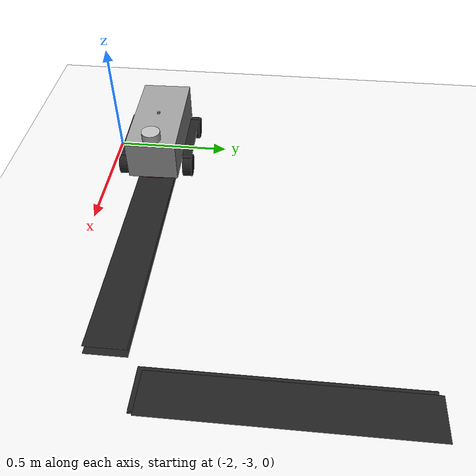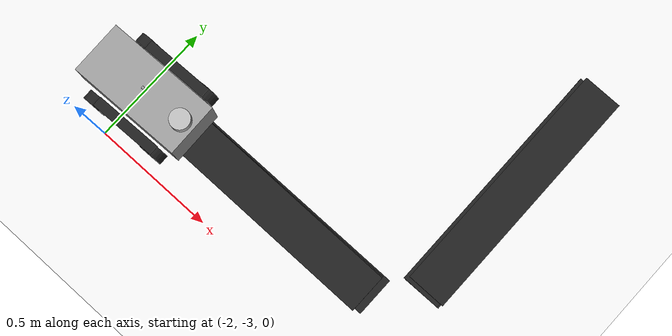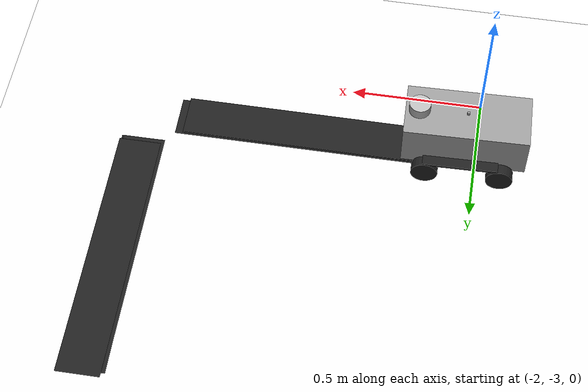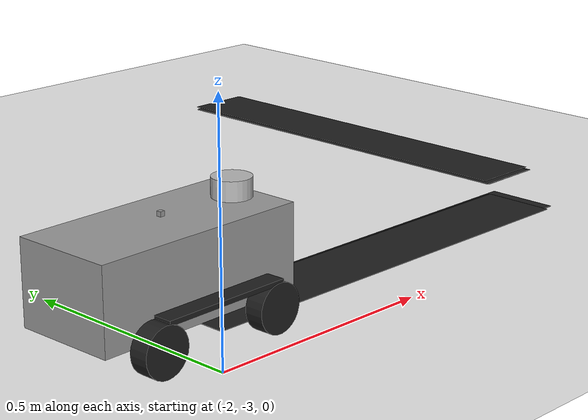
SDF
<sdf version="1.7">
 <world name="default">
  <model name="ground_plane">
   <static>1</static>
   <link name="link">
    <collision name="collision">
     <geometry><plane><normal>0 0 1</normal><size>100 100</size></plane></geometry>
     <surface>
      <contact><collide_bitmask>65535</collide_bitmask></contact>
      <friction><ode><mu>100</mu><mu2>50</mu2></ode></friction>
     </surface>
    </collision>
    <visual name="visual">
     <cast_shadows>0</cast_shadows>
     <geometry><plane><normal>0 0 1</normal><size>100 100</size></plane></geometry>
     <material>
      <script><uri>file://media/materials/scripts/gazebo.material</uri><name>Gazebo/White</name></script>
     </material>
    </visual>
   </link>
  </model>
  <model name="tankbot0">
   <pose>-1.9498 -2.79034 -1e-06 -2e-06 -3e-06 0.024518</pose>
   <frame name="tankbot::__model__" attached_to="tankbot::chassis">
    <pose relative_to="__model__">0 0 0 0 -0 0</pose>
   </frame>
   <link name="tankbot::chassis">
    <pose relative_to="tankbot::__model__">0 0 0.135 0 -0 0</pose>
    <inertial>
     <pose>0.0465 0 0 0 -0 0</pose>
     <mass>2</mass>
     <inertia>
      <ixx>0.0125927</ixx>
      <iyy>0.0408542</iyy>
      <izz>0.0438135</izz>
      <ixy>0</ixy>
      <ixz>0</ixz>
      <iyz>0</iyz>
     </inertia>
    </inertial>
    <collision name="collision"><geometry><box><size>0.465 0.216 0.17</size></box></geometry></collision>
    <visual name="visual">
     <geometry><box><size>0.465 0.216 0.17</size></box></geometry>
     <material>
      <script><uri>file://media/materials/scripts/gazebo.material</uri><name>Gazebo/Grey</name></script>
     </material>
    </visual>
   </link>
   <link name="tankbot::wheel_fl">
    <pose relative_to="tankbot::__model__">0.1395 0.142 0.05 -1.5708 -0.087266 0</pose>
    <inertial>
     <mass>0.25</mass>
     <inertia>
      <ixx>0.000189583</ixx>
      <iyy>0.000189583</iyy>
      <izz>0.0003125</izz>
      <ixy>0</ixy>
      <ixz>0</ixz>
      <iyz>0</iyz>
     </inertia>
    </inertial>
    <collision name="collision">
     <geometry><cylinder><radius>0.05</radius><length>0.04</length></cylinder></geometry>
    </collision>
    <visual name="tankbot::wheel_fl">
     <geometry><cylinder><radius>0.05</radius><length>0.04</length></cylinder></geometry>
     <material>
      <script><uri>file://media/materials/scripts/gazebo.material</uri><name>Gazebo/Black</name></script>
     </material>
    </visual>
   </link>
   <joint name="tankbot::wheel_fl_drive" type="revolute">
    <parent>tankbot::chassis</parent>
    <child>tankbot::wheel_fl</child>
    <axis>
     <xyz>0 0 1</xyz>
     <limit><lower>-1e+16</lower><upper>1e+16</upper></limit>
     <dynamics><spring_reference>0</spring_reference><spring_stiffness>0</spring_stiffness></dynamics>
    </axis>
   </joint>
   <link name="tankbot::chain_l_up">
    <pose relative_to="tankbot::__model__">0.0098 0.14 0.1 0 -0 0</pose>
    <gravity>0</gravity>
    <collision name="collision"><geometry><box><size>0.28 0.04 0.01</size></box></geometry></collision>
    <visual name="visual">
     <geometry><box><size>0.28 0.04 0.01</size></box></geometry>
     <material>
      <script><uri>file://media/materials/scripts/gazebo.material</uri><name>Gazebo/Black</name></script>
     </material>
    </visual>
    <inertial>
     <inertia><ixx>1</ixx><ixy>0</ixy><ixz>0</ixz><iyy>1</iyy><iyz>0</iyz><izz>1</izz></inertia>
     <mass>1</mass>
    </inertial>
   </link>
   <link name="tankbot::chain_r_up">
    <pose relative_to="tankbot::__model__">0.0098 -0.14 0.1 0 -0 0</pose>
    <gravity>0</gravity>
    <collision name="collision"><geometry><box><size>0.28 0.04 0.01</size></box></geometry></collision>
    <visual name="visual">
     <geometry><box><size>0.28 0.04 0.01</size></box></geometry>
     <material>
      <script><uri>file://media/materials/scripts/gazebo.material</uri><name>Gazebo/Black</name></script>
     </material>
    </visual>
    <inertial>
     <inertia><ixx>1</ixx><ixy>0</ixy><ixz>0</ixz><iyy>1</iyy><iyz>0</iyz><izz>1</izz></inertia>
     <mass>1</mass>
    </inertial>
   </link>
   <joint name="tankbot::chain_up_joint" type="revolute">
    <parent>tankbot::chassis</parent>
    <child>tankbot::chain_r_up</child>
   </joint>
   <joint name="tankbot::chain_up_2_joint" type="revolute">
    <parent>tankbot::chassis</parent>
    <child>tankbot::chain_l_up</child>
   </joint>
   <link name="tankbot::wheel_fr">
    <pose relative_to="tankbot::__model__">0.1395 -0.142 0.05 -1.5708 -0.087266 0</pose>
    <inertial>
     <mass>0.25</mass>
     <inertia>
      <ixx>0.000189583</ixx>
      <iyy>0.000189583</iyy>
      <izz>0.0003125</izz>
      <ixy>0</ixy>
      <ixz>0</ixz>
      <iyz>0</iyz>
     </inertia>
    </inertial>
    <collision name="collision">
     <geometry><cylinder><radius>0.05</radius><length>0.04</length></cylinder></geometry>
    </collision>
    <visual name="visual">
     <geometry><cylinder><radius>0.05</radius><length>0.04</length></cylinder></geometry>
     <material>
      <script><uri>file://media/materials/scripts/gazebo.material</uri><name>Gazebo/Black</name></script>
     </material>
    </visual>
   </link>
   <joint name="tankbot::wheel_fr_drive" type="revolute">
    <parent>tankbot::chassis</parent>
    <child>tankbot::wheel_fr</child>
    <axis>
     <xyz>0 0 1</xyz>
     <limit><lower>-1e+16</lower><upper>1e+16</upper></limit>
     <dynamics><spring_reference>0</spring_reference><spring_stiffness>0</spring_stiffness></dynamics>
    </axis>
   </joint>
   <link name="tankbot::wheel_rl">
    <pose relative_to="tankbot::__model__">-0.1395 0.142 0.05 -1.5708 0 0</pose>
    <inertial>
     <mass>0.25</mass>
     <inertia>
      <ixx>0.000189583</ixx>
      <iyy>0.000189583</iyy>
      <izz>0.0003125</izz>
      <ixy>0</ixy>
      <ixz>0</ixz>
      <iyz>0</iyz>
     </inertia>
    </inertial>
    <collision name="collision">
     <geometry><cylinder><radius>0</radius><length>0</length></cylinder></geometry>
    </collision>
    <visual name="visual">
     <geometry><cylinder><radius>0.05</radius><length>0.04</length></cylinder></geometry>
     <material>
      <script><uri>file://media/materials/scripts/gazebo.material</uri><name>Gazebo/Black</name></script>
     </material>
    </visual>
   </link>
   <joint name="tankbot::wheel_rl_drive" type="revolute">
    <parent>tankbot::chassis</parent>
    <child>tankbot::wheel_rl</child>
    <axis>
     <xyz>0 0 1</xyz>
     <limit><lower>-1e+16</lower><upper>1e+16</upper></limit>
     <dynamics><spring_reference>0</spring_reference><spring_stiffness>0</spring_stiffness></dynamics>
    </axis>
   </joint>
   <link name="tankbot::wheel_rr">
    <pose relative_to="tankbot::__model__">-0.1395 -0.142 0.05 -1.5708 0 0</pose>
    <inertial>
     <mass>0.25</mass>
     <inertia>
      <ixx>0.000189583</ixx>
      <iyy>0.000189583</iyy>
      <izz>0.0003125</izz>
      <ixy>0</ixy>
      <ixz>0</ixz>
      <iyz>0</iyz>
     </inertia>
    </inertial>
    <collision name="collision">
     <geometry><cylinder><radius>0.05</radius><length>0.04</length></cylinder></geometry>
    </collision>
    <visual name="visual">
     <geometry><cylinder><radius>0.05</radius><length>0.04</length></cylinder></geometry>
     <material>
      <script><uri>file://media/materials/scripts/gazebo.material</uri><name>Gazebo/Black</name></script>
     </material>
    </visual>
   </link>
   <joint name="tankbot::wheel_rr_drive" type="revolute">
    <parent>tankbot::chassis</parent>
    <child>tankbot::wheel_rr</child>
    <axis>
     <xyz>0 0 1</xyz>
     <limit><lower>-1e+16</lower><upper>1e+16</upper></limit>
     <dynamics><spring_reference>0</spring_reference><spring_stiffness>0</spring_stiffness></dynamics>
    </axis>
   </joint>
   <frame name="tankbot::ultrasonic_sensor::__model__" attached_to="tankbot::ultrasonic_sensor::link">
    <pose relative_to="tankbot::__model__">0.18 0 0.24 0 -0 0</pose>
   </frame>
   <link name="tankbot::ultrasonic_sensor::link">
    <inertial>
     <mass>0.1</mass>
     <inertia><ixx>1</ixx><ixy>0</ixy><ixz>0</ixz><iyy>1</iyy><iyz>0</iyz><izz>1</izz></inertia>
    </inertial>
    <visual name="visual">
     <geometry><cylinder><radius>0.04</radius><length>0.04</length></cylinder></geometry>
    </visual>
    <collision name="collision-base">
     <pose>0 0 -0.0145 0 -0 0</pose>
     <geometry><box><size>0.05 0.05 0.041</size></box></geometry>
    </collision>
    <collision name="collision-top">
     <pose>0 0 0.0205 0 -0 0</pose>
     <geometry><cylinder><radius>0.021</radius><length>0.029</length></cylinder></geometry>
    </collision>
    <sensor name="sonar" type="sonar">
     <pose>0.04 0 0 0 1.5 3.14</pose>
     <sonar><min>0</min><max>3</max><radius>0.3</radius></sonar>
     <plugin name="sonar" filename="libSonarPlugin.so"/>
     <always_on>1</always_on>
     <update_rate>30</update_rate>
     <visualize>1</visualize>
    </sensor>
    <pose relative_to="tankbot::ultrasonic_sensor::__model__">0 0 0 0 -0 0</pose>
   </link>
   <joint name="tankbot::sonar_joint" type="fixed">
    <child>tankbot::ultrasonic_sensor::link</child>
    <parent>tankbot::chassis</parent>
   </joint>
   <frame name="tankbot::camera_sensor::__model__" attached_to="tankbot::camera_sensor::link">
    <pose relative_to="tankbot::__model__">0.2 0 0.04 0 1.57 0</pose>
   </frame>
   <link name="tankbot::camera_sensor::link">
    <inertial>
     <mass>0.1</mass>
     <inertia><ixx>1</ixx><ixy>0</ixy><ixz>0</ixz><iyy>1</iyy><iyz>0</iyz><izz>1</izz></inertia>
    </inertial>
    <visual name="visual">
     <geometry><box><size>0.01 0.07 0.04</size></box></geometry>
     <material>
      <script><uri>file://media/materials/scripts/gazebo.material</uri><name>Gazebo/Red</name></script>
     </material>
    </visual>
    <collision name="collision">
     <pose>0 0 -0.0145 0 -0 0</pose>
     <geometry><box><size>0.01 0.07 0.04</size></box></geometry>
    </collision>
    <sensor name="camera" type="camera">
     <camera>
      <horizontal_fov>1.39626</horizontal_fov>
      <image><width>2</width><height>2</height></image>
      <clip><near>0.02</near><far>300</far></clip>
     </camera>
     <always_on>1</always_on>
     <update_rate>10</update_rate>
     <visualize>1</visualize>
     <plugin name="camera_controller" filename="libCameraPlugin.so"/>
    </sensor>
    <pose relative_to="tankbot::camera_sensor::__model__">0 0 0 0 -0 0</pose>
   </link>
   <frame name="tankbot::microphone_sensor::__model__" attached_to="tankbot::microphone_sensor::link">
    <pose relative_to="tankbot::__model__">0 0 0.23 0 -0 0</pose>
   </frame>
   <link name="tankbot::microphone_sensor::link">
    <inertial>
     <mass>0.1</mass>
     <inertia><ixx>1</ixx><ixy>0</ixy><ixz>0</ixz><iyy>1</iyy><iyz>0</iyz><izz>1</izz></inertia>
    </inertial>
    <visual name="visual">
     <geometry><box><size>0.01 0.01 0.01</size></box></geometry>
     <material>
      <script><uri>file://media/materials/scripts/gazebo.material</uri><name>Gazebo/Grey</name></script>
     </material>
    </visual>
    <collision name="collision"><geometry><box><size>0.01 0.01 0.01</size></box></geometry></collision>
    <pose relative_to="tankbot::microphone_sensor::__model__">0 0 0 0 -0 0</pose>
   </link>
   <plugin name="microphone_controller" filename="libmicrophone_control_plugin.so"/>
   <joint name="tankbot::camera_joint" type="fixed">
    <child>tankbot::camera_sensor::link</child>
    <parent>tankbot::chassis</parent>
   </joint>
   <plugin name="tankbot_control" filename="libtank_control_plugin.so"/>
   <plugin name="tankbot_control" filename="libtank_control_plugin.so"/>
  </model>
  <model name="unit_box_clone_0_clone_clone_0_clone_0">
   <link name="link">
    <inertial>
     <mass>1</mass>
     <inertia>
      <ixx>0.166667</ixx>
      <ixy>0</ixy>
      <ixz>0</ixz>
      <iyy>0.166667</iyy>
      <iyz>0</iyz>
      <izz>0.166667</izz>
     </inertia>
    </inertial>
    <visual name="visual">
     <geometry><box><size>1 0.160776 0.000937</size></box></geometry>
     <material>
      <script><name>Gazebo/Black</name><uri>file://media/materials/scripts/gazebo.material</uri></script>
      <shader type="pixel"><normal_map>__default__</normal_map></shader>
      <ambient>0 0 0 1</ambient>
      <diffuse>0 0 0 1</diffuse>
      <specular>0.1 0.1 0.1 1</specular>
      <emissive>0 0 0 1</emissive>
     </material>
    </visual>
    <collision name="collision">
     <geometry><box><size>1 0.160776 0.000937</size></box></geometry>
     <surface>
      <friction>
       <ode><mu>1</mu><mu2>1</mu2><fdir1>0 0 0</fdir1><slip1>0</slip1><slip2>0</slip2></ode>
       <torsional>
        <coefficient>1</coefficient>
        <patch_radius>0</patch_radius>
        <surface_radius>0</surface_radius>
        <use_patch_radius>1</use_patch_radius>
        <ode><slip>0</slip></ode>
       </torsional>
      </friction>
      <bounce><restitution_coefficient>0</restitution_coefficient><threshold>1e+06</threshold></bounce>
      <contact>
       <collide_without_contact>0</collide_without_contact>
       <collide_without_contact_bitmask>1</collide_without_contact_bitmask>
       <collide_bitmask>1</collide_bitmask>
       <ode>
        <soft_cfm>0</soft_cfm>
        <soft_erp>0.2</soft_erp>
        <kp>1e+13</kp>
        <kd>1</kd>
        <max_vel>0.01</max_vel>
        <min_depth>0</min_depth>
       </ode>
       <bullet>
        <split_impulse>1</split_impulse>
        <split_impulse_penetration_threshold>-0.01</split_impulse_penetration_threshold>
        <soft_cfm>0</soft_cfm>
        <soft_erp>0.2</soft_erp>
        <kp>1e+13</kp>
        <kd>1</kd>
       </bullet>
      </contact>
     </surface>
    </collision>
   </link>
   <static>0</static>
   <pose>-1.37557 -2.78641 0.002186 1.6e-05 0.000206 -0.001155</pose>
  </model>
  <model name="unit_box_clone_0_clone_clone_0_clone_clone_clone_0_clone">
   <link name="link">
    <inertial>
     <mass>1</mass>
     <inertia>
      <ixx>0.166667</ixx>
      <ixy>0</ixy>
      <ixz>0</ixz>
      <iyy>0.166667</iyy>
      <iyz>0</iyz>
      <izz>0.166667</izz>
     </inertia>
    </inertial>
    <visual name="visual">
     <geometry><box><size>1 0.160776 0.000937</size></box></geometry>
     <material>
      <script><name>Gazebo/Black</name><uri>file://media/materials/scripts/gazebo.material</uri></script>
      <shader type="pixel"><normal_map>__default__</normal_map></shader>
      <ambient>0 0 0 1</ambient>
      <diffuse>0 0 0 1</diffuse>
      <specular>0.1 0.1 0.1 1</specular>
      <emissive>0 0 0 1</emissive>
     </material>
    </visual>
    <collision name="collision">
     <geometry><box><size>1 0.160776 0.000937</size></box></geometry>
     <surface>
      <friction>
       <ode><mu>1</mu><mu2>1</mu2><fdir1>0 0 0</fdir1><slip1>0</slip1><slip2>0</slip2></ode>
       <torsional>
        <coefficient>1</coefficient>
        <patch_radius>0</patch_radius>
        <surface_radius>0</surface_radius>
        <use_patch_radius>1</use_patch_radius>
        <ode><slip>0</slip></ode>
       </torsional>
      </friction>
      <bounce><restitution_coefficient>0</restitution_coefficient><threshold>1e+06</threshold></bounce>
      <contact>
       <collide_without_contact>0</collide_without_contact>
       <collide_without_contact_bitmask>1</collide_without_contact_bitmask>
       <collide_bitmask>1</collide_bitmask>
       <ode>
        <soft_cfm>0</soft_cfm>
        <soft_erp>0.2</soft_erp>
        <kp>1e+13</kp>
        <kd>1</kd>
        <max_vel>0.01</max_vel>
        <min_depth>0</min_depth>
       </ode>
       <bullet>
        <split_impulse>1</split_impulse>
        <split_impulse_penetration_threshold>-0.01</split_impulse_penetration_threshold>
        <soft_cfm>0</soft_cfm>
        <soft_erp>0.2</soft_erp>
        <kp>1e+13</kp>
        <kd>1</kd>
       </bullet>
      </contact>
     </surface>
    </collision>
   </link>
   <static>0</static>
   <pose>-0.725916 -2.13603 0.002308 -4e-06 -6.7e-05 -1.56699</pose>
  </model>
  <model name="unit_box_clone_0_clone_clone_0_clone_0_clone">
   <link name="link">
    <inertial>
     <mass>1</mass>
     <inertia>
      <ixx>0.166667</ixx>
      <ixy>0</ixy>
      <ixz>0</ixz>
      <iyy>0.166667</iyy>
      <iyz>0</iyz>
      <izz>0.166667</izz>
     </inertia>
    </inertial>
    <visual name="visual">
     <geometry><box><size>1 0.160776 0.000937</size></box></geometry>
     <material>
      <script><name>Gazebo/Black</name><uri>file://media/materials/scripts/gazebo.material</uri></script>
      <shader type="pixel"><normal_map>__default__</normal_map></shader>
      <ambient>0 0 0 1</ambient>
      <diffuse>0 0 0 1</diffuse>
      <specular>0.1 0.1 0.1 1</specular>
      <emissive>0 0 0 1</emissive>
     </material>
    </visual>
    <collision name="collision">
     <geometry><box><size>1 0.160776 0.000937</size></box></geometry>
     <surface>
      <friction>
       <ode><mu>1</mu><mu2>1</mu2><fdir1>0 0 0</fdir1><slip1>0</slip1><slip2>0</slip2></ode>
       <torsional>
        <coefficient>1</coefficient>
        <patch_radius>0</patch_radius>
        <surface_radius>0</surface_radius>
        <use_patch_radius>1</use_patch_radius>
        <ode><slip>0</slip></ode>
       </torsional>
      </friction>
      <bounce><restitution_coefficient>0</restitution_coefficient><threshold>1e+06</threshold></bounce>
      <contact>
       <collide_without_contact>0</collide_without_contact>
       <collide_without_contact_bitmask>1</collide_without_contact_bitmask>
       <collide_bitmask>1</collide_bitmask>
       <ode>
        <soft_cfm>0</soft_cfm>
        <soft_erp>0.2</soft_erp>
        <kp>1e+13</kp>
        <kd>1</kd>
        <max_vel>0.01</max_vel>
        <min_depth>0</min_depth>
       </ode>
       <bullet>
        <split_impulse>1</split_impulse>
        <split_impulse_penetration_threshold>-0.01</split_impulse_penetration_threshold>
        <soft_cfm>0</soft_cfm>
        <soft_erp>0.2</soft_erp>
        <kp>1e+13</kp>
        <kd>1</kd>
       </bullet>
      </contact>
     </surface>
    </collision>
   </link>
   <static>0</static>
   <pose>-1.37532 -2.78313 0.001257 1.7e-05 0.00019 0.002011</pose>
  </model>
  <model name="unit_box_clone_0_clone_clone_0_clone_0_clone_0">
   <link name="link">
    <inertial>
     <mass>1</mass>
     <inertia>
      <ixx>0.166667</ixx>
      <ixy>0</ixy>
      <ixz>0</ixz>
      <iyy>0.166667</iyy>
      <iyz>0</iyz>
      <izz>0.166667</izz>
     </inertia>
    </inertial>
    <visual name="visual">
     <geometry><box><size>1 0.160776 0.000937</size></box></geometry>
     <material>
      <script><name>Gazebo/Black</name><uri>file://media/materials/scripts/gazebo.material</uri></script>
      <shader type="pixel"><normal_map>__default__</normal_map></shader>
      <ambient>0 0 0 1</ambient>
      <diffuse>0 0 0 1</diffuse>
      <specular>0.1 0.1 0.1 1</specular>
      <emissive>0 0 0 1</emissive>
     </material>
    </visual>
    <collision name="collision">
     <geometry><box><size>1 0.160776 0.000937</size></box></geometry>
     <surface>
      <friction>
       <ode><mu>1</mu><mu2>1</mu2><fdir1>0 0 0</fdir1><slip1>0</slip1><slip2>0</slip2></ode>
       <torsional>
        <coefficient>1</coefficient>
        <patch_radius>0</patch_radius>
        <surface_radius>0</surface_radius>
        <use_patch_radius>1</use_patch_radius>
        <ode><slip>0</slip></ode>
       </torsional>
      </friction>
      <bounce><restitution_coefficient>0</restitution_coefficient><threshold>1e+06</threshold></bounce>
      <contact>
       <collide_without_contact>0</collide_without_contact>
       <collide_without_contact_bitmask>1</collide_without_contact_bitmask>
       <collide_bitmask>1</collide_bitmask>
       <ode>
        <soft_cfm>0</soft_cfm>
        <soft_erp>0.2</soft_erp>
        <kp>1e+13</kp>
        <kd>1</kd>
        <max_vel>0.01</max_vel>
        <min_depth>0</min_depth>
       </ode>
       <bullet>
        <split_impulse>1</split_impulse>
        <split_impulse_penetration_threshold>-0.01</split_impulse_penetration_threshold>
        <soft_cfm>0</soft_cfm>
        <soft_erp>0.2</soft_erp>
        <kp>1e+13</kp>
        <kd>1</kd>
       </bullet>
      </contact>
     </surface>
    </collision>
   </link>
   <static>0</static>
   <pose>-1.34736 -2.77733 0.000441 0 -5.4e-05 0.001725</pose>
  </model>
  <model name="unit_box_clone_0_clone_clone_0_clone_clone_clone_2_clone_clone_1">
   <link name="link">
    <inertial>
     <mass>1</mass>
     <inertia>
      <ixx>0.166667</ixx>
      <ixy>0</ixy>
      <ixz>0</ixz>
      <iyy>0.166667</iyy>
      <iyz>0</iyz>
      <izz>0.166667</izz>
     </inertia>
    </inertial>
    <visual name="visual">
     <geometry><box><size>1 0.160776 0.000937</size></box></geometry>
     <material>
      <script><name>Gazebo/Black</name><uri>file://media/materials/scripts/gazebo.material</uri></script>
      <shader type="pixel"><normal_map>__default__</normal_map></shader>
      <ambient>0 0 0 1</ambient>
      <diffuse>0 0 0 1</diffuse>
      <specular>0.1 0.1 0.1 1</specular>
      <emissive>0 0 0 1</emissive>
     </material>
    </visual>
    <collision name="collision">
     <geometry><box><size>1 0.160776 0.000937</size></box></geometry>
     <surface>
      <friction>
       <ode><mu>1</mu><mu2>1</mu2><fdir1>0 0 0</fdir1><slip1>0</slip1><slip2>0</slip2></ode>
       <torsional>
        <coefficient>1</coefficient>
        <patch_radius>0</patch_radius>
        <surface_radius>0</surface_radius>
        <use_patch_radius>1</use_patch_radius>
        <ode><slip>0</slip></ode>
       </torsional>
      </friction>
      <bounce><restitution_coefficient>0</restitution_coefficient><threshold>1e+06</threshold></bounce>
      <contact>
       <collide_without_contact>0</collide_without_contact>
       <collide_without_contact_bitmask>1</collide_without_contact_bitmask>
       <collide_bitmask>1</collide_bitmask>
       <ode>
        <soft_cfm>0</soft_cfm>
        <soft_erp>0.2</soft_erp>
        <kp>1e+13</kp>
        <kd>1</kd>
        <max_vel>0.01</max_vel>
        <min_depth>0</min_depth>
       </ode>
       <bullet>
        <split_impulse>1</split_impulse>
        <split_impulse_penetration_threshold>-0.01</split_impulse_penetration_threshold>
        <soft_cfm>0</soft_cfm>
        <soft_erp>0.2</soft_erp>
        <kp>1e+13</kp>
        <kd>1</kd>
       </bullet>
      </contact>
     </surface>
    </collision>
   </link>
   <static>0</static>
   <pose>-0.736115 -2.15345 0.000469 -0 -0 -1.55933</pose>
  </model>
  <model name="unit_box_clone_0_clone_clone_0_clone_clone_clone_2_clone_clone_2">
   <link name="link">
    <inertial>
     <mass>1</mass>
     <inertia>
      <ixx>0.166667</ixx>
      <ixy>0</ixy>
      <ixz>0</ixz>
      <iyy>0.166667</iyy>
      <iyz>0</iyz>
      <izz>0.166667</izz>
     </inertia>
    </inertial>
    <visual name="visual">
     <geometry><box><size>1 0.160776 0.000937</size></box></geometry>
     <material>
      <script><name>Gazebo/Black</name><uri>file://media/materials/scripts/gazebo.material</uri></script>
      <shader type="pixel"><normal_map>__default__</normal_map></shader>
      <ambient>0 0 0 1</ambient>
      <diffuse>0 0 0 1</diffuse>
      <specular>0.1 0.1 0.1 1</specular>
      <emissive>0 0 0 1</emissive>
     </material>
    </visual>
    <collision name="collision">
     <geometry><box><size>1 0.160776 0.000937</size></box></geometry>
     <surface>
      <friction>
       <ode><mu>1</mu><mu2>1</mu2><fdir1>0 0 0</fdir1><slip1>0</slip1><slip2>0</slip2></ode>
       <torsional>
        <coefficient>1</coefficient>
        <patch_radius>0</patch_radius>
        <surface_radius>0</surface_radius>
        <use_patch_radius>1</use_patch_radius>
        <ode><slip>0</slip></ode>
       </torsional>
      </friction>
      <bounce><restitution_coefficient>0</restitution_coefficient><threshold>1e+06</threshold></bounce>
      <contact>
       <collide_without_contact>0</collide_without_contact>
       <collide_without_contact_bitmask>1</collide_without_contact_bitmask>
       <collide_bitmask>1</collide_bitmask>
       <ode>
        <soft_cfm>0</soft_cfm>
        <soft_erp>0.2</soft_erp>
        <kp>1e+13</kp>
        <kd>1</kd>
        <max_vel>0.01</max_vel>
        <min_depth>0</min_depth>
       </ode>
       <bullet>
        <split_impulse>1</split_impulse>
        <split_impulse_penetration_threshold>-0.01</split_impulse_penetration_threshold>
        <soft_cfm>0</soft_cfm>
        <soft_erp>0.2</soft_erp>
        <kp>1e+13</kp>
        <kd>1</kd>
       </bullet>
      </contact>
     </surface>
    </collision>
   </link>
   <static>0</static>
   <pose>-0.73886 -2.15314 0.001372 -4e-06 -6.7e-05 -1.56637</pose>
  </model>
 </world>
</sdf>
